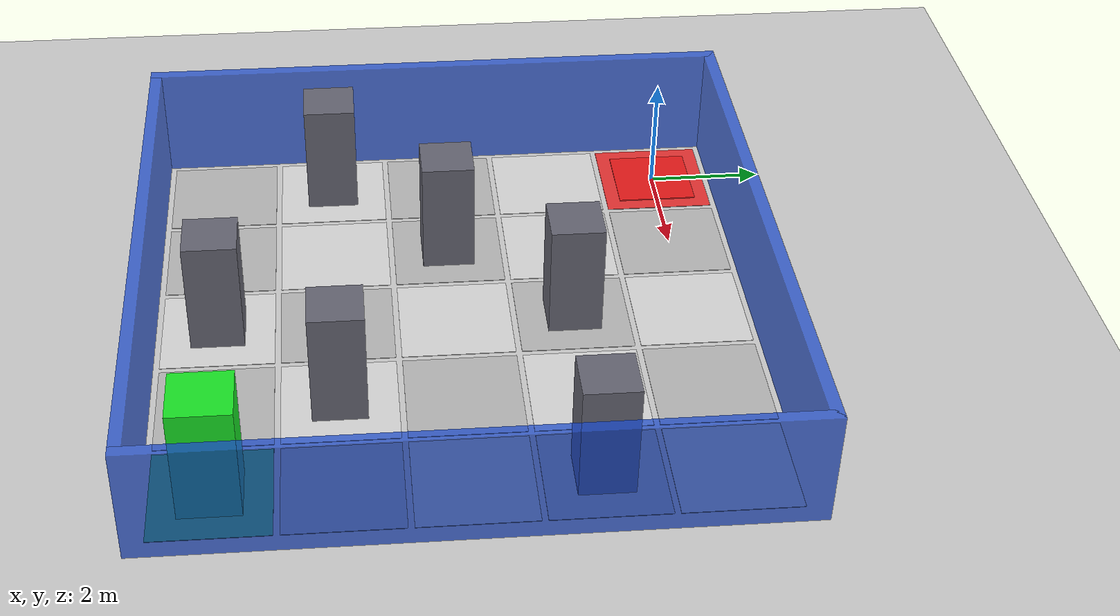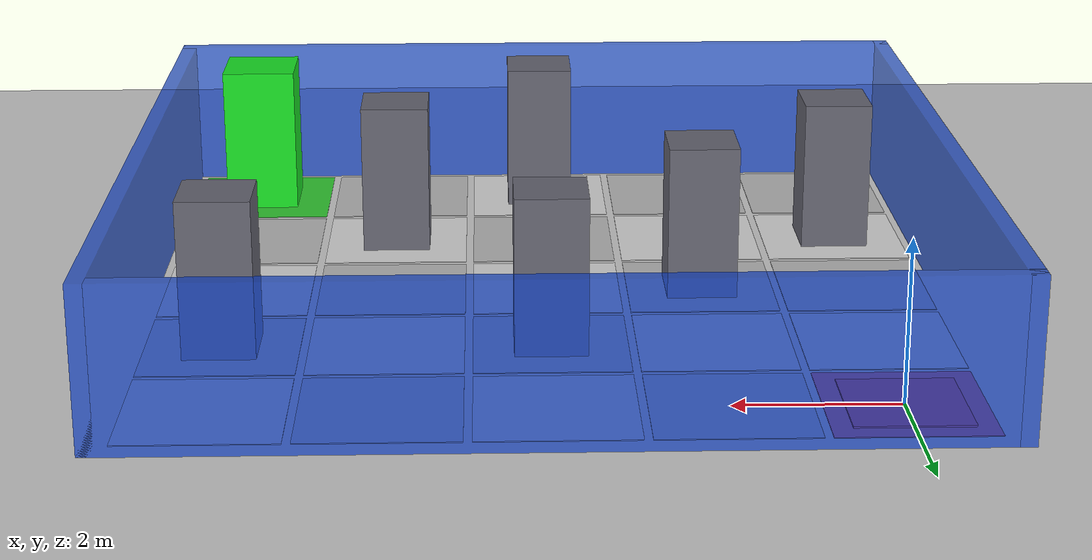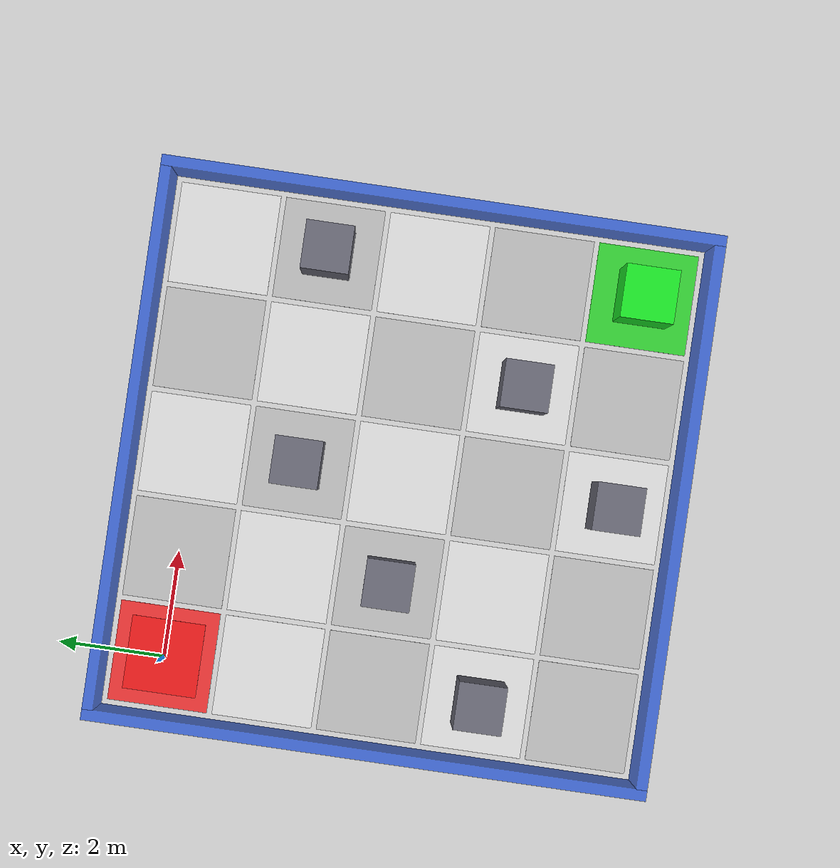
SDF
<?xml version="1.0" ?>
<sdf version="1.5">
  <world name="maze_world">
    <!-- Sun -->
    <include>
      <uri>model://sun</uri>
    </include>

    <!-- Ground Plane -->
    <include>
      <uri>model://ground_plane</uri>
    </include>

    <!-- Physics Settings -->
    <physics type="ode">
      <real_time_update_rate>1000.0</real_time_update_rate>
      <max_step_size>0.001</max_step_size>
      <real_time_factor>1</real_time_factor>
    </physics>

    <!-- GUI Camera View (overhead angled view of the 5x5 grid) -->
    <gui fullscreen='0'>
      <camera name='user_camera'>
        <pose>4.0 -4.0 14.0 0 1.25 -1.57</pose>
        <view_controller>orbit</view_controller>
      </camera>
    </gui>

    <!-- =================== 5x5 GRID FLOOR TILES =================== -->
    <model name="grid_floor">
      <static>true</static>
      <!-- Row 0: x=8.0 -->
      <link name="tile_0_0"><pose>8.0  0.0 0.005 0 0 0</pose><visual name="v"><geometry><box><size>1.9 1.9 0.01</size></box></geometry><material><ambient>0.85 0.85 0.85 1</ambient><diffuse>0.85 0.85 0.85 1</diffuse></material></visual></link>
      <link name="tile_0_1"><pose>8.0 -2.0 0.005 0 0 0</pose><visual name="v"><geometry><box><size>1.9 1.9 0.01</size></box></geometry><material><ambient>0.72 0.72 0.72 1</ambient><diffuse>0.72 0.72 0.72 1</diffuse></material></visual></link>
      <link name="tile_0_2"><pose>8.0 -4.0 0.005 0 0 0</pose><visual name="v"><geometry><box><size>1.9 1.9 0.01</size></box></geometry><material><ambient>0.85 0.85 0.85 1</ambient><diffuse>0.85 0.85 0.85 1</diffuse></material></visual></link>
      <link name="tile_0_3"><pose>8.0 -6.0 0.005 0 0 0</pose><visual name="v"><geometry><box><size>1.9 1.9 0.01</size></box></geometry><material><ambient>0.72 0.72 0.72 1</ambient><diffuse>0.72 0.72 0.72 1</diffuse></material></visual></link>
      <link name="tile_0_4"><pose>8.0 -8.0 0.005 0 0 0</pose><visual name="v"><geometry><box><size>1.9 1.9 0.01</size></box></geometry><material><ambient>0.2 0.8 0.2 1</ambient><diffuse>0.2 0.8 0.2 1</diffuse></material></visual></link>

      <!-- Row 1: x=6.0 -->
      <link name="tile_1_0"><pose>6.0  0.0 0.005 0 0 0</pose><visual name="v"><geometry><box><size>1.9 1.9 0.01</size></box></geometry><material><ambient>0.72 0.72 0.72 1</ambient><diffuse>0.72 0.72 0.72 1</diffuse></material></visual></link>
      <link name="tile_1_1"><pose>6.0 -2.0 0.005 0 0 0</pose><visual name="v"><geometry><box><size>1.9 1.9 0.01</size></box></geometry><material><ambient>0.85 0.85 0.85 1</ambient><diffuse>0.85 0.85 0.85 1</diffuse></material></visual></link>
      <link name="tile_1_2"><pose>6.0 -4.0 0.005 0 0 0</pose><visual name="v"><geometry><box><size>1.9 1.9 0.01</size></box></geometry><material><ambient>0.72 0.72 0.72 1</ambient><diffuse>0.72 0.72 0.72 1</diffuse></material></visual></link>
      <link name="tile_1_3"><pose>6.0 -6.0 0.005 0 0 0</pose><visual name="v"><geometry><box><size>1.9 1.9 0.01</size></box></geometry><material><ambient>0.85 0.85 0.85 1</ambient><diffuse>0.85 0.85 0.85 1</diffuse></material></visual></link>
      <link name="tile_1_4"><pose>6.0 -8.0 0.005 0 0 0</pose><visual name="v"><geometry><box><size>1.9 1.9 0.01</size></box></geometry><material><ambient>0.72 0.72 0.72 1</ambient><diffuse>0.72 0.72 0.72 1</diffuse></material></visual></link>

      <!-- Row 2: x=4.0 -->
      <link name="tile_2_0"><pose>4.0  0.0 0.005 0 0 0</pose><visual name="v"><geometry><box><size>1.9 1.9 0.01</size></box></geometry><material><ambient>0.85 0.85 0.85 1</ambient><diffuse>0.85 0.85 0.85 1</diffuse></material></visual></link>
      <link name="tile_2_1"><pose>4.0 -2.0 0.005 0 0 0</pose><visual name="v"><geometry><box><size>1.9 1.9 0.01</size></box></geometry><material><ambient>0.72 0.72 0.72 1</ambient><diffuse>0.72 0.72 0.72 1</diffuse></material></visual></link>
      <link name="tile_2_2"><pose>4.0 -4.0 0.005 0 0 0</pose><visual name="v"><geometry><box><size>1.9 1.9 0.01</size></box></geometry><material><ambient>0.85 0.85 0.85 1</ambient><diffuse>0.85 0.85 0.85 1</diffuse></material></visual></link>
      <link name="tile_2_3"><pose>4.0 -6.0 0.005 0 0 0</pose><visual name="v"><geometry><box><size>1.9 1.9 0.01</size></box></geometry><material><ambient>0.72 0.72 0.72 1</ambient><diffuse>0.72 0.72 0.72 1</diffuse></material></visual></link>
      <link name="tile_2_4"><pose>4.0 -8.0 0.005 0 0 0</pose><visual name="v"><geometry><box><size>1.9 1.9 0.01</size></box></geometry><material><ambient>0.85 0.85 0.85 1</ambient><diffuse>0.85 0.85 0.85 1</diffuse></material></visual></link>

      <!-- Row 3: x=2.0 -->
      <link name="tile_3_0"><pose>2.0  0.0 0.005 0 0 0</pose><visual name="v"><geometry><box><size>1.9 1.9 0.01</size></box></geometry><material><ambient>0.72 0.72 0.72 1</ambient><diffuse>0.72 0.72 0.72 1</diffuse></material></visual></link>
      <link name="tile_3_1"><pose>2.0 -2.0 0.005 0 0 0</pose><visual name="v"><geometry><box><size>1.9 1.9 0.01</size></box></geometry><material><ambient>0.85 0.85 0.85 1</ambient><diffuse>0.85 0.85 0.85 1</diffuse></material></visual></link>
      <link name="tile_3_2"><pose>2.0 -4.0 0.005 0 0 0</pose><visual name="v"><geometry><box><size>1.9 1.9 0.01</size></box></geometry><material><ambient>0.72 0.72 0.72 1</ambient><diffuse>0.72 0.72 0.72 1</diffuse></material></visual></link>
      <link name="tile_3_3"><pose>2.0 -6.0 0.005 0 0 0</pose><visual name="v"><geometry><box><size>1.9 1.9 0.01</size></box></geometry><material><ambient>0.85 0.85 0.85 1</ambient><diffuse>0.85 0.85 0.85 1</diffuse></material></visual></link>
      <link name="tile_3_4"><pose>2.0 -8.0 0.005 0 0 0</pose><visual name="v"><geometry><box><size>1.9 1.9 0.01</size></box></geometry><material><ambient>0.72 0.72 0.72 1</ambient><diffuse>0.72 0.72 0.72 1</diffuse></material></visual></link>

      <!-- Row 4: x=0.0 -->
      <link name="tile_4_0"><pose>0.0  0.0 0.005 0 0 0</pose><visual name="v"><geometry><box><size>1.9 1.9 0.01</size></box></geometry><material><ambient>0.9 0.2 0.2 1</ambient><diffuse>0.9 0.2 0.2 1</diffuse></material></visual></link>
      <link name="tile_4_1"><pose>0.0 -2.0 0.005 0 0 0</pose><visual name="v"><geometry><box><size>1.9 1.9 0.01</size></box></geometry><material><ambient>0.85 0.85 0.85 1</ambient><diffuse>0.85 0.85 0.85 1</diffuse></material></visual></link>
      <link name="tile_4_2"><pose>0.0 -4.0 0.005 0 0 0</pose><visual name="v"><geometry><box><size>1.9 1.9 0.01</size></box></geometry><material><ambient>0.72 0.72 0.72 1</ambient><diffuse>0.72 0.72 0.72 1</diffuse></material></visual></link>
      <link name="tile_4_3"><pose>0.0 -6.0 0.005 0 0 0</pose><visual name="v"><geometry><box><size>1.9 1.9 0.01</size></box></geometry><material><ambient>0.85 0.85 0.85 1</ambient><diffuse>0.85 0.85 0.85 1</diffuse></material></visual></link>
      <link name="tile_4_4"><pose>0.0 -8.0 0.005 0 0 0</pose><visual name="v"><geometry><box><size>1.9 1.9 0.01</size></box></geometry><material><ambient>0.72 0.72 0.72 1</ambient><diffuse>0.72 0.72 0.72 1</diffuse></material></visual></link>
    </model>

    <!-- =================== START PAD (Red, World 0, 0) =================== -->
    <model name="start_pad">
      <static>true</static>
      <pose>0.0 0.0 0.02 0 0 0</pose>
      <link name="link">
        <visual name="visual">
          <geometry><box><size>1.4 1.4 0.02</size></box></geometry>
          <material>
            <ambient>0.9 0.1 0.1 1.0</ambient>
            <diffuse>0.9 0.1 0.1 1.0</diffuse>
          </material>
        </visual>
      </link>
    </model>

    <!-- =================== GOAL (Green Obstacle Pillar, World 8, -8) =================== -->
    <model name="goal_obstacle">
      <static>true</static>
      <pose>8.0 -8.0 1.0 0 0 0</pose>
      <link name="link">
        <visual name="visual_pillar">
          <geometry><box><size>1.0 1.0 2.0</size></box></geometry>
          <material>
            <ambient>0.1 0.9 0.15 1.0</ambient>
            <diffuse>0.1 0.9 0.15 1.0</diffuse>
          </material>
        </visual>
      </link>
    </model>

    <!-- =================== SCATTERED RANDOM OBSTACLES =================== -->
    <!-- HOLE 1: Grid(0,1) => World(8.0, -2.0) -->
    <model name="obstacle_hole1">
      <static>true</static>
      <pose>8.0 -2.0 1.0 0 0 0</pose>
      <link name="link">
        <collision name="col"><geometry><box><size>0.9 0.9 2.0</size></box></geometry></collision>
        <visual name="vis"><geometry><box><size>0.9 0.9 2.0</size></box></geometry>
          <material><ambient>0.4 0.4 0.45 1.0</ambient><diffuse>0.4 0.4 0.45 1.0</diffuse></material>
        </visual>
      </link>
    </model>

    <!-- HOLE 2: Grid(1,3) => World(6.0, -6.0) -->
    <model name="obstacle_hole2">
      <static>true</static>
      <pose>6.0 -6.0 1.0 0 0 0</pose>
      <link name="link">
        <collision name="col"><geometry><box><size>0.9 0.9 2.0</size></box></geometry></collision>
        <visual name="vis"><geometry><box><size>0.9 0.9 2.0</size></box></geometry>
          <material><ambient>0.4 0.4 0.45 1.0</ambient><diffuse>0.4 0.4 0.45 1.0</diffuse></material>
        </visual>
      </link>
    </model>

    <!-- HOLE 3: Grid(2,1) => World(4.0, -2.0) -->
    <model name="obstacle_hole3">
      <static>true</static>
      <pose>4.0 -2.0 1.0 0 0 0</pose>
      <link name="link">
        <collision name="col"><geometry><box><size>0.9 0.9 2.0</size></box></geometry></collision>
        <visual name="vis"><geometry><box><size>0.9 0.9 2.0</size></box></geometry>
          <material><ambient>0.4 0.4 0.45 1.0</ambient><diffuse>0.4 0.4 0.45 1.0</diffuse></material>
        </visual>
      </link>
    </model>

    <!-- HOLE 4: Grid(2,4) => World(4.0, -8.0) -->
    <model name="obstacle_hole4">
      <static>true</static>
      <pose>4.0 -8.0 1.0 0 0 0</pose>
      <link name="link">
        <collision name="col"><geometry><box><size>0.9 0.9 2.0</size></box></geometry></collision>
        <visual name="vis"><geometry><box><size>0.9 0.9 2.0</size></box></geometry>
          <material><ambient>0.4 0.4 0.45 1.0</ambient><diffuse>0.4 0.4 0.45 1.0</diffuse></material>
        </visual>
      </link>
    </model>

    <!-- HOLE 5: Grid(3,2) => World(2.0, -4.0) -->
    <model name="obstacle_hole5">
      <static>true</static>
      <pose>2.0 -4.0 1.0 0 0 0</pose>
      <link name="link">
        <collision name="col"><geometry><box><size>0.9 0.9 2.0</size></box></geometry></collision>
        <visual name="vis"><geometry><box><size>0.9 0.9 2.0</size></box></geometry>
          <material><ambient>0.4 0.4 0.45 1.0</ambient><diffuse>0.4 0.4 0.45 1.0</diffuse></material>
        </visual>
      </link>
    </model>

    <!-- HOLE 6: Grid(4,3) => World(0.0, -6.0) -->
    <model name="obstacle_hole6">
      <static>true</static>
      <pose>0.0 -6.0 1.0 0 0 0</pose>
      <link name="link">
        <collision name="col"><geometry><box><size>0.9 0.9 2.0</size></box></geometry></collision>
        <visual name="vis"><geometry><box><size>0.9 0.9 2.0</size></box></geometry>
          <material><ambient>0.4 0.4 0.45 1.0</ambient><diffuse>0.4 0.4 0.45 1.0</diffuse></material>
        </visual>
      </link>
    </model>

    <!-- =================== BLUE BOUNDARY WALLS =================== -->
    <!-- North wall (x = 9.15) -->
    <model name="boundary_north">
      <static>true</static>
      <pose>9.15 -4.0 1.0 0 0 0</pose>
      <link name="link">
        <collision name="collision"><geometry><box><size>0.2 10.5 2.0</size></box></geometry></collision>
        <visual name="visual">
          <geometry><box><size>0.2 10.5 2.0</size></box></geometry>
          <material><ambient>0.1 0.3 0.85 0.75</ambient><diffuse>0.1 0.3 0.85 0.75</diffuse></material>
        </visual>
      </link>
    </model>

    <!-- South wall (x = -1.15) -->
    <model name="boundary_south">
      <static>true</static>
      <pose>-1.15 -4.0 1.0 0 0 0</pose>
      <link name="link">
        <collision name="collision"><geometry><box><size>0.2 10.5 2.0</size></box></geometry></collision>
        <visual name="visual">
          <geometry><box><size>0.2 10.5 2.0</size></box></geometry>
          <material><ambient>0.1 0.3 0.85 0.75</ambient><diffuse>0.1 0.3 0.85 0.75</diffuse></material>
        </visual>
      </link>
    </model>

    <!-- West wall (y = 1.15) -->
    <model name="boundary_west">
      <static>true</static>
      <pose>4.0 1.15 1.0 0 0 0</pose>
      <link name="link">
        <collision name="collision"><geometry><box><size>10.5 0.2 2.0</size></box></geometry></collision>
        <visual name="visual">
          <geometry><box><size>10.5 0.2 2.0</size></box></geometry>
          <material><ambient>0.1 0.3 0.85 0.75</ambient><diffuse>0.1 0.3 0.85 0.75</diffuse></material>
        </visual>
      </link>
    </model>

    <!-- East wall (y = -9.15) -->
    <model name="boundary_east">
      <static>true</static>
      <pose>4.0 -9.15 1.0 0 0 0</pose>
      <link name="link">
        <collision name="collision"><geometry><box><size>10.5 0.2 2.0</size></box></geometry></collision>
        <visual name="visual">
          <geometry><box><size>10.5 0.2 2.0</size></box></geometry>
          <material><ambient>0.1 0.3 0.85 0.75</ambient><diffuse>0.1 0.3 0.85 0.75</diffuse></material>
        </visual>
      </link>
    </model>

  </world>
</sdf>
